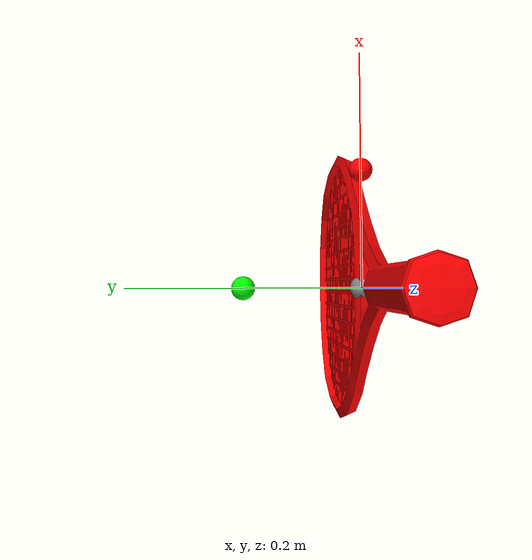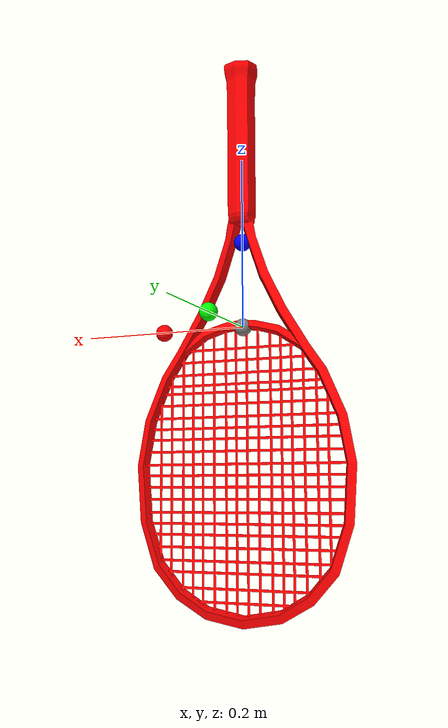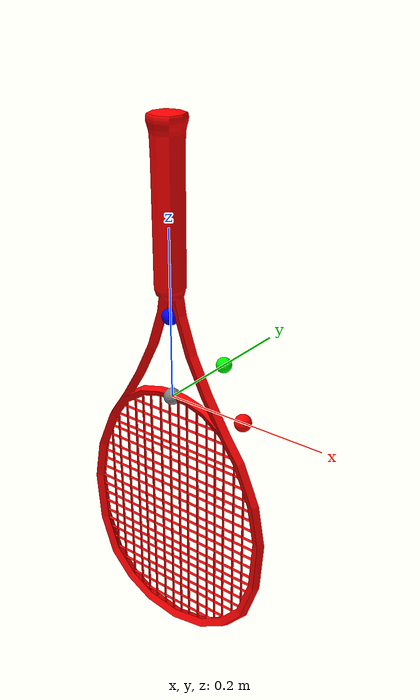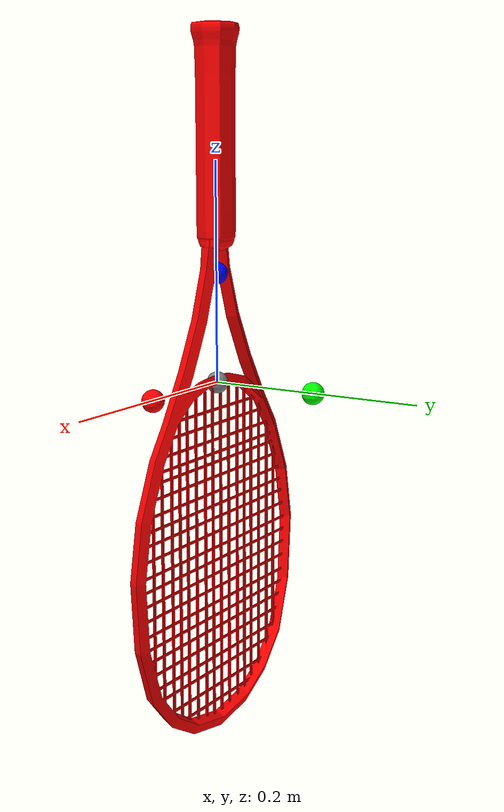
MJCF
<mujoco>

<option gravity="0 0 0"/>

    <asset>
        <mesh name="test" file="test.obj"/>
    </asset>

    <worldbody>

    <light pos="0 0 4.5" dir="0 0 -1" directional="true"/>
    <geom name="x_axis" type="sphere" pos="0.1 0 0" size="0.01" rgba="1 0 0 1" contype="0" conaffinity="0"/>
    <geom name="y_axis" type="sphere" pos="0 0.1 0" size="0.01" rgba="0 1 0 1" contype="0" conaffinity="0"/>
    <geom name="z_axis" type="sphere" pos="0 0 0.1" size="0.01" rgba="0 0 1 1" contype="0" conaffinity="0"/>
    <geom name="zero_point" type="sphere" pos="0 0 0" size="0.01" rgba="0.5 0.5 0.5 1" contype="0" conaffinity="0"/>
    <geom name="test_mesh" type="mesh" mesh="test" pos="0 0 0.0" rgba="1 0 0 1" contype="0" conaffinity="0"/>

    </worldbody>
</mujoco>
